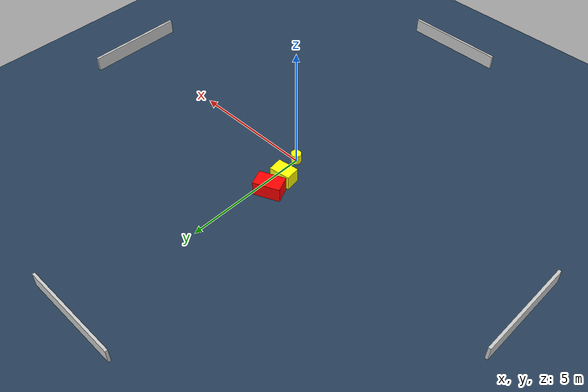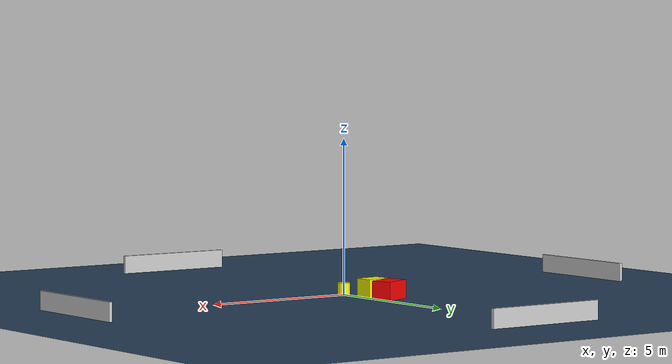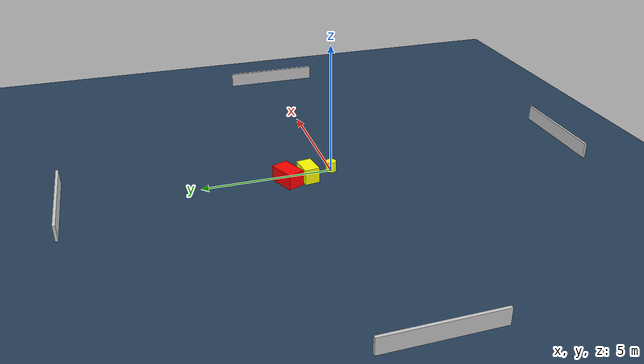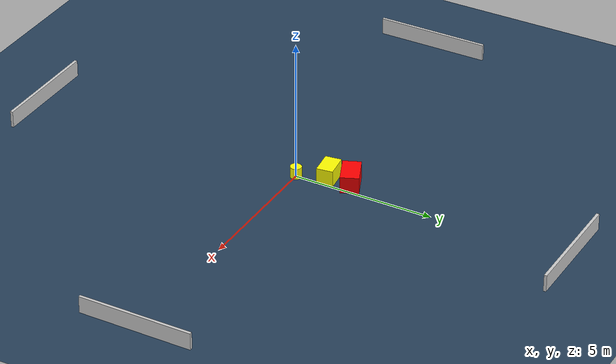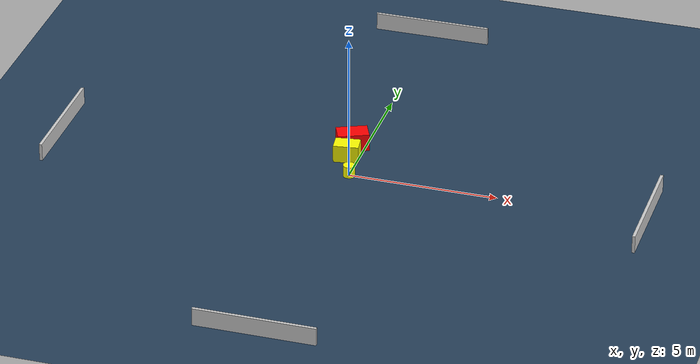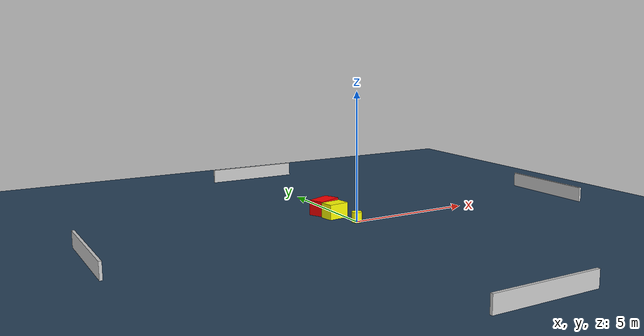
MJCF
<?xml version="1.0" ?>
<mujoco model="generated_environment">
  <option timestep="0.01" integrator="RK4" cone="elliptic"/>
  <default>
    <geom density="1"/>
  </default>
  <asset>
    <texture builtin="gradient" height="3072" name="skybox" rgb1="0.3 0.5 0.7" rgb2="0 0 0" type="skybox" width="512"/>
    <texture builtin="checker" height="300" name="groundplane" rgb1="0.2 0.3 0.4" rgb2="0.1 0.2 0.3" type="2d" width="300"/>
    <material name="groundplane" reflectance="0.2" texrepeat="5 5" texture="groundplane"/>
  </asset>
  <worldbody>
    <light dir="0 0 -1" directional="true" pos="0 0 1.5"/>
    <geom condim="3" friction="0.5 0.005 0.001" material="groundplane" name="floor" pos="0 0 0" size="0 0 0.05" type="plane"/>
    <body name="walls">
      <geom name="wall_1" condim="4" pos="-10.0 0.0 0.3" rgba="0.800000011920929 0.800000011920929 0.800000011920929 1.0" size="0.05 2.0 0.3" type="box"/>
      <geom name="wall_2" condim="4" pos="10.0 0.0 0.3" rgba="0.800000011920929 0.800000011920929 0.800000011920929 1.0" size="0.05 2.0 0.3" type="box"/>
      <geom name="wall_3" condim="4" pos="0.0 -10.0 0.3" rgba="0.800000011920929 0.800000011920929 0.800000011920929 1.0" size="2.0 0.05 0.3" type="box"/>
      <geom name="wall_4" condim="4" pos="0.0 10.0 0.3" rgba="0.800000011920929 0.800000011920929 0.800000011920929 1.0" size="2.0 0.05 0.3" type="box"/>
    </body>
    <body name="robot">
      <joint name="joint_x" type="slide" pos="0 0 0" axis="1 0 0"/>
      <joint name="joint_y" type="slide" pos="0 0 0" axis="0 1 0"/>
      <geom name="robot" type="cylinder" pos="0.0 0.0 0.2" size="0.2 0.2 0.0" mass="5.0" friction="1.0 0.005 0.0001" condim="4" rgba="1.0 1.0 0.0 1.0"/>
    </body>
    <body name="obstacle_1_movable">
      <geom name="obstacle_1_movable" condim="4" pos="-0.3873814839262257 1.0342603459051627 0.3" euler="0 0 97.57869013876474" friction="0.0 0.005 0.001" rgba="1.0 1.0 0.0 1.0" size="0.2860176014397959 0.4216397183845073 0.3" type="box" mass="0.1"/>
      <joint type="free"/>
    </body>
    <body name="obstacle_2_static">
      <geom name="obstacle_2_static" condim="4" pos="-0.4349341668104409 1.8256905049605185 0.3" euler="0 0 203.58624402421935" friction="0.0 0.005 0.001" rgba="1.0 0.0 0.0 1.0" size="0.52612071837198 0.32274504156859907 0.3" type="box"/>
    </body>
  </worldbody>
  <actuator>
    <motor name="actuator_x" joint="joint_x" gear="1" ctrlrange="-1 1"/>
    <motor name="actuator_y" joint="joint_y" gear="1" ctrlrange="-1 1"/>
  </actuator>
</mujoco>
